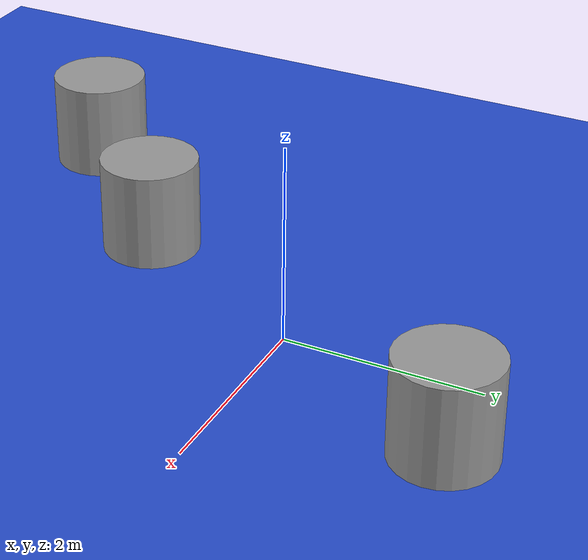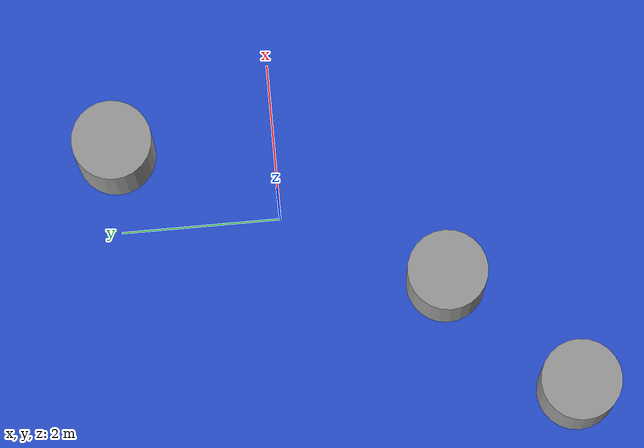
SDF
<sdf version="1.4">
 <world name="default">
  <light name="sun" type="directional">
   <pose>0 0 10 0 -0 0</pose>
   <diffuse>0.8 0.8 0.8 1</diffuse>
   <specular>0.1 0.1 0.1 1</specular>
   <attenuation>
    <range>1000</range>
    <constant>0.9</constant>
    <linear>0.01</linear>
    <quadratic>0.001</quadratic>
   </attenuation>
   <direction>-0.5 0.5 -1</direction>
  </light>
  <model name="ground_plane">
   <static>1</static>
   <link name="link">
    <collision name="collision">
     <geometry><plane><normal>0 0 1</normal><size>100 100</size></plane></geometry>
     <surface><friction><ode><mu>50</mu><mu2>25</mu2></ode></friction></surface>
    </collision>
    <visual name="visual">
     <cast_shadows>0</cast_shadows>
     <geometry><plane><normal>0 0 1</normal><size>100 100</size></plane></geometry>
     <material>
      <script><uri>file://media/materials/scripts/gazebo.material</uri><name>Gazebo/Blue</name></script>
     </material>
    </visual>
    <velocity_decay><linear>0</linear><angular>0</angular></velocity_decay>
   </link>
  </model>
  <physics type="ode">
   <max_step_size>0.001</max_step_size>
   <real_time_factor>1</real_time_factor>
   <real_time_update_rate>250</real_time_update_rate>
   <gravity>0 0 -9.8</gravity>
  </physics>
  <scene><ambient>0.4 0.4 0.4 1</ambient><background>0.7 0.7 0.7 1</background><shadows>0</shadows></scene>
  <spherical_coordinates>
   <surface_model>EARTH_WGS84</surface_model>
   <latitude_deg>0</latitude_deg>
   <longitude_deg>0</longitude_deg>
   <elevation>0</elevation>
   <heading_deg>0</heading_deg>
  </spherical_coordinates>
  <model name="buoy_1">
   <pose>-1 -2 0.5 0 -0 0</pose>
   <static>1</static>
   <link name="link">
    <inertial>
     <mass>1</mass>
     <inertia><ixx>1</ixx><ixy>0</ixy><ixz>0</ixz><iyy>1</iyy><iyz>0</iyz><izz>1</izz></inertia>
    </inertial>
    <collision name="collision">
     <geometry><cylinder><radius>0.121743</radius><length>0.741441</length></cylinder></geometry>
    </collision>
    <visual name="visual">
     <geometry><cylinder><radius>0.5</radius><length>1</length></cylinder></geometry>
     <material>
      <script><uri>file://media/materials/scripts/gazebo.material</uri><name>Gazebo/Grey</name></script>
     </material>
    </visual>
    <velocity_decay><linear>0</linear><angular>0</angular></velocity_decay>
   </link>
  </model>
  <model name="buoy_2">
   <pose>1 2 0.5 0 -0 0</pose>
   <static>1</static>
   <link name="link">
    <inertial>
     <mass>1</mass>
     <inertia><ixx>1</ixx><ixy>0</ixy><ixz>0</ixz><iyy>1</iyy><iyz>0</iyz><izz>1</izz></inertia>
    </inertial>
    <collision name="collision">
     <geometry><cylinder><radius>0.121743</radius><length>0.741441</length></cylinder></geometry>
    </collision>
    <visual name="visual">
     <geometry><cylinder><radius>0.5</radius><length>1</length></cylinder></geometry>
     <material>
      <script><uri>file://media/materials/scripts/gazebo.material</uri><name>Gazebo/Grey</name></script>
     </material>
    </visual>
    <velocity_decay><linear>0</linear><angular>0</angular></velocity_decay>
   </link>
  </model>
  <model name="buoy_3">
   <pose>-2.5 -3.5 0.5 0 -0 0</pose>
   <static>1</static>
   <link name="link">
    <inertial>
     <mass>1</mass>
     <inertia><ixx>1</ixx><ixy>0</ixy><ixz>0</ixz><iyy>1</iyy><iyz>0</iyz><izz>1</izz></inertia>
    </inertial>
    <collision name="collision">
     <geometry><cylinder><radius>0.121743</radius><length>0.741441</length></cylinder></geometry>
    </collision>
    <visual name="visual">
     <geometry><cylinder><radius>0.5</radius><length>1</length></cylinder></geometry>
     <material>
      <script><uri>file://media/materials/scripts/gazebo.material</uri><name>Gazebo/Grey</name></script>
     </material>
    </visual>
    <velocity_decay><linear>0</linear><angular>0</angular></velocity_decay>
   </link>
  </model>
 </world>
</sdf>
